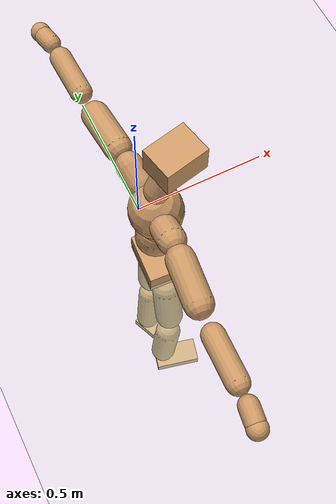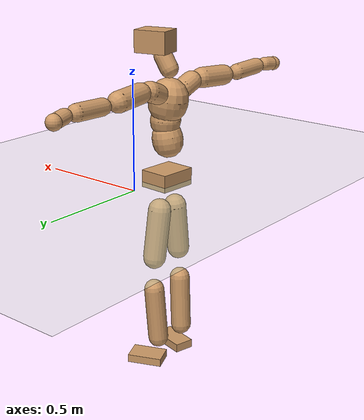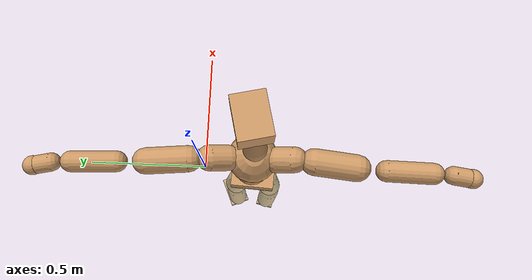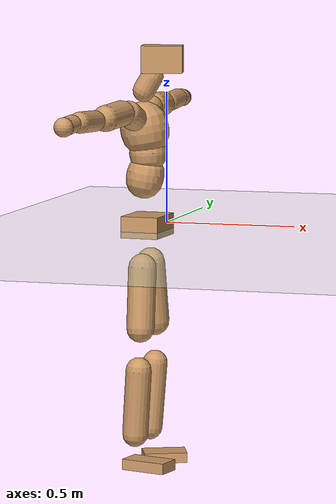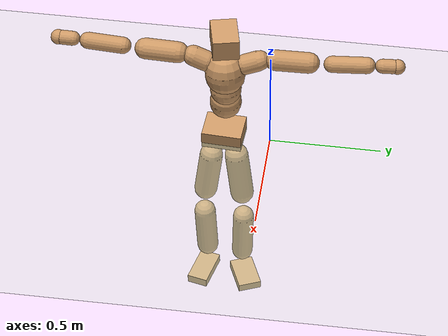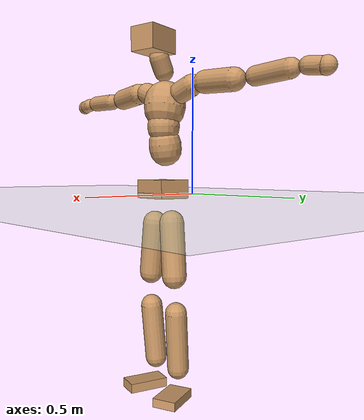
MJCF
<mujoco model="humanoid">
  <compiler coordinate="local" angle="radian"/>
  <default>
    <joint damping="0.0" armature="0.01" stiffness="0.0" limited="true"/>
    <geom conaffinity="1" condim="3" contype="7" margin="0.001" rgba="0.8 0.6 .4 1"/>
  </default>
  <asset>
    <texture type="skybox" builtin="gradient" rgb1=".4 .5 .6" rgb2="0 0 0" width="100" height="100"/>
    <texture builtin="flat" height="1278" mark="cross" markrgb="1 1 1" name="texgeom" random="0.01" rgb1="0.8 0.6 0.4" rgb2="0.8 0.6 0.4" type="cube" width="127"/>
    <texture builtin="checker" height="100" name="texplane" rgb1="0 0 0" rgb2="0.8 0.8 0.8" type="2d" width="100"/>
    <material name="MatPlane" reflectance="0.5" shininess="1" specular="1" texrepeat="60 60" texture="texplane"/>
    <material name="geom" texture="texgeom" texuniform="true"/>
  </asset>
  <worldbody>
    <light cutoff="100" diffuse="1 1 1" dir="-0 0 -1.3" directional="true" exponent="1" pos="0 0 1.3" specular=".1 .1 .1"/>
    <geom conaffinity="1" condim="3" name="floor" pos="0 0 0" rgba="0.8 0.9 0.8 1" size="100 100 .2" type="plane" material="MatPlane"/>
    <body name="Pelvis" pos="-0.0046 -0.21 0.0225">
      <freejoint name="Pelvis"/>
      <geom type="box" contype="1" conaffinity="1" density="500" pos="-0.0103 0.0006 -0.0076" size="0.0718 0.0897 0.0401" quat="0.9996 0.0000 0.0000 -0.0292" name="Pelvis"/>
      <body name="L_Hip" pos="-0.0173 0.0477 -0.0747">
        <joint name="L_Hip_x" type="hinge" pos="0 0 0" axis="1 0 0" stiffness="800" damping="80" armature="0.02" range="-180.0000 180.0000"/>
        <joint name="L_Hip_y" type="hinge" pos="0 0 0" axis="0 1 0" stiffness="800" damping="80" armature="0.02" range="-180.0000 180.0000"/>
        <joint name="L_Hip_z" type="hinge" pos="0 0 0" axis="0 0 1" stiffness="800" damping="80" armature="0.02" range="-180.0000 180.0000"/>
        <geom type="capsule" contype="1" conaffinity="1" density="500" fromto="0.0029 0.0091 -0.0771 0.0118 0.0366 -0.3085" size="0.0529" name="L_Hip"/>
        <body name="L_Knee" pos="0.0147 0.0457 -0.3856">
          <joint name="L_Knee_x" type="hinge" pos="0 0 0" axis="1 0 0" stiffness="800" damping="80" armature="0.02" range="-180.0000 180.0000"/>
          <joint name="L_Knee_y" type="hinge" pos="0 0 0" axis="0 1 0" stiffness="800" damping="80" armature="0.02" range="-180.0000 180.0000"/>
          <joint name="L_Knee_z" type="hinge" pos="0 0 0" axis="0 0 1" stiffness="800" damping="80" armature="0.02" range="-180.0000 180.0000"/>
          <geom type="capsule" contype="1" conaffinity="1" density="500" fromto="-0.0061 -0.0024 -0.0835 -0.0245 -0.0095 -0.3339" size="0.0472" name="L_Knee"/>
          <body name="L_Ankle" pos="-0.0307 -0.0119 -0.4174">
            <joint name="L_Ankle_x" type="hinge" pos="0 0 0" axis="1 0 0" stiffness="800" damping="80" armature="0.02" range="-180.0000 180.0000"/>
            <joint name="L_Ankle_y" type="hinge" pos="0 0 0" axis="0 1 0" stiffness="800" damping="80" armature="0.02" range="-180.0000 180.0000"/>
            <joint name="L_Ankle_z" type="hinge" pos="0 0 0" axis="0 0 1" stiffness="800" damping="80" armature="0.02" range="-180.0000 180.0000"/>
            <geom type="box" contype="1" conaffinity="1" density="500" pos="0.0573 0.0240 -0.0294" size="0.082 0.0525 0.019" quat="0.9804 0.0000 0.0000 0.1970" name="L_Ankle"/>
            <body name="L_Toe" pos="0.1146 0.048 -0.0589">
              <joint name="L_Toe_x" type="hinge" pos="0 0 0" axis="1 0 0" stiffness="500" damping="50" armature="0.02" range="-180.0000 180.0000"/>
              <joint name="L_Toe_y" type="hinge" pos="0 0 0" axis="0 1 0" stiffness="500" damping="50" armature="0.02" range="-180.0000 180.0000"/>
              <joint name="L_Toe_z" type="hinge" pos="0 0 0" axis="0 0 1" stiffness="500" damping="50" armature="0.02" range="-180.0000 180.0000"/>
              <geom type="box" contype="1" conaffinity="1" density="500" pos="0.0000 0.0000 0.0310" size="0.001 0.0025 0.001" quat="0.9796 0.0000 0.0000 0.2011" name="L_Toe"/>
            </body>
          </body>
        </body>
      </body>
      <body name="R_Hip" pos="-0.0127 -0.0487 -0.0837">
        <joint name="R_Hip_x" type="hinge" pos="0 0 0" axis="1 0 0" stiffness="800" damping="80" armature="0.02" range="-180.0000 180.0000"/>
        <joint name="R_Hip_y" type="hinge" pos="0 0 0" axis="0 1 0" stiffness="800" damping="80" armature="0.02" range="-180.0000 180.0000"/>
        <joint name="R_Hip_z" type="hinge" pos="0 0 0" axis="0 0 1" stiffness="800" damping="80" armature="0.02" range="-180.0000 180.0000"/>
        <geom type="capsule" contype="1" conaffinity="1" density="500" fromto="0.0001 -0.0089 -0.0754 0.0004 -0.0356 -0.3015" size="0.052" name="R_Hip"/>
        <body name="R_Knee" pos="0.0005 -0.0445 -0.3769">
          <joint name="R_Knee_x" type="hinge" pos="0 0 0" axis="1 0 0" stiffness="800" damping="80" armature="0.02" range="-180.0000 180.0000"/>
          <joint name="R_Knee_y" type="hinge" pos="0 0 0" axis="0 1 0" stiffness="800" damping="80" armature="0.02" range="-180.0000 180.0000"/>
          <joint name="R_Knee_z" type="hinge" pos="0 0 0" axis="0 0 1" stiffness="800" damping="80" armature="0.02" range="-180.0000 180.0000"/>
          <geom type="capsule" contype="1" conaffinity="1" density="500" fromto="-0.0058 0.0033 -0.0817 -0.0232 0.0131 -0.3268" size="0.0483" name="R_Knee"/>
          <body name="R_Ankle" pos="-0.029 0.0163 -0.4085">
            <joint name="R_Ankle_x" type="hinge" pos="0 0 0" axis="1 0 0" stiffness="800" damping="80" armature="0.02" range="-180.0000 180.0000"/>
            <joint name="R_Ankle_y" type="hinge" pos="0 0 0" axis="0 1 0" stiffness="800" damping="80" armature="0.02" range="-180.0000 180.0000"/>
            <joint name="R_Ankle_z" type="hinge" pos="0 0 0" axis="0 0 1" stiffness="800" damping="80" armature="0.02" range="-180.0000 180.0000"/>
            <geom type="box" contype="1" conaffinity="1" density="500" pos="0.0618 -0.0147 -0.0300" size="0.0877 0.0465 0.0203" quat="0.9932 0.0000 0.0000 -0.1168" name="R_Ankle"/>
            <body name="R_Toe" pos="0.1236 -0.0295 -0.06">
              <joint name="R_Toe_x" type="hinge" pos="0 0 0" axis="1 0 0" stiffness="500" damping="50" armature="0.02" range="-180.0000 180.0000"/>
              <joint name="R_Toe_y" type="hinge" pos="0 0 0" axis="0 1 0" stiffness="500" damping="50" armature="0.02" range="-180.0000 180.0000"/>
              <joint name="R_Toe_z" type="hinge" pos="0 0 0" axis="0 0 1" stiffness="500" damping="50" armature="0.02" range="-180.0000 180.0000"/>
              <geom type="box" contype="1" conaffinity="1" density="500" pos="0.0000 0.0000 0.0308" size="0.0009 0.0023 0.0011" quat="0.9942 0.0000 0.0000 -0.1075" name="R_Toe"/>
            </body>
          </body>
        </body>
      </body>
      <body name="Torso" pos="-0.0316 0.0046 0.1127">
        <joint name="Torso_x" type="hinge" pos="0 0 0" axis="1 0 0" stiffness="1000" damping="100" armature="0.02" range="-180.0000 180.0000"/>
        <joint name="Torso_y" type="hinge" pos="0 0 0" axis="0 1 0" stiffness="1000" damping="100" armature="0.02" range="-180.0000 180.0000"/>
        <joint name="Torso_z" type="hinge" pos="0 0 0" axis="0 0 1" stiffness="1000" damping="100" armature="0.02" range="-180.0000 180.0000"/>
        <geom type="capsule" contype="1" conaffinity="1" density="500" fromto="0.0138 0.0028 0.0748 0.0092 0.0019 0.0499" size="0.0703" name="Torso"/>
        <body name="Spine" pos="0.023 0.0047 0.1246">
          <joint name="Spine_x" type="hinge" pos="0 0 0" axis="1 0 0" stiffness="1000" damping="100" armature="0.02" range="-180.0000 180.0000"/>
          <joint name="Spine_y" type="hinge" pos="0 0 0" axis="0 1 0" stiffness="1000" damping="100" armature="0.02" range="-180.0000 180.0000"/>
          <joint name="Spine_z" type="hinge" pos="0 0 0" axis="0 0 1" stiffness="1000" damping="100" armature="0.02" range="-180.0000 180.0000"/>
          <geom type="capsule" contype="1" conaffinity="1" density="500" fromto="-0.0009 -0.0007 0.0299 -0.0006 -0.0005 0.0199" size="0.0696" name="Spine"/>
          <body name="Chest" pos="-0.0014 -0.0012 0.0499">
            <joint name="Chest_x" type="hinge" pos="0 0 0" axis="1 0 0" stiffness="1000" damping="100" armature="0.02" range="-180.0000 180.0000"/>
            <joint name="Chest_y" type="hinge" pos="0 0 0" axis="0 1 0" stiffness="1000" damping="100" armature="0.02" range="-180.0000 180.0000"/>
            <joint name="Chest_z" type="hinge" pos="0 0 0" axis="0 0 1" stiffness="1000" damping="100" armature="0.02" range="-180.0000 180.0000"/>
            <geom type="capsule" contype="1" conaffinity="1" density="500" fromto="-0.0132 -0.0047 0.0790 -0.0088 -0.0032 0.0527" size="0.0901" name="Chest"/>
            <body name="Neck" pos="-0.021 -0.0128 0.1903">
              <joint name="Neck_x" type="hinge" pos="0 0 0" axis="1 0 0" stiffness="500" damping="50" armature="0.02" range="-180.0000 180.0000"/>
              <joint name="Neck_y" type="hinge" pos="0 0 0" axis="0 1 0" stiffness="500" damping="50" armature="0.02" range="-180.0000 180.0000"/>
              <joint name="Neck_z" type="hinge" pos="0 0 0" axis="0 0 1" stiffness="500" damping="50" armature="0.02" range="-180.0000 180.0000"/>
              <geom type="capsule" contype="1" conaffinity="1" density="500" fromto="0.0102 0.0020 0.0179 0.0408 0.0080 0.0716" size="0.0418" name="Neck"/>
              <body name="Head" pos="0.051 0.0099 0.0895">
                <joint name="Head_x" type="hinge" pos="0 0 0" axis="1 0 0" stiffness="500" damping="50" armature="0.02" range="-180.0000 180.0000"/>
                <joint name="Head_y" type="hinge" pos="0 0 0" axis="0 1 0" stiffness="500" damping="50" armature="0.02" range="-180.0000 180.0000"/>
                <joint name="Head_z" type="hinge" pos="0 0 0" axis="0 0 1" stiffness="500" damping="50" armature="0.02" range="-180.0000 180.0000"/>
                <geom type="box" contype="1" conaffinity="1" density="500" pos="0.0265 0.0060 0.0457" size="0.0759 0.0583 0.0504" quat="0.9939 0.0000 0.0000 0.1106" name="Head"/>
              </body>
            </body>
            <body name="L_Thorax" pos="-0.0213 0.0598 0.1028">
              <joint name="L_Thorax_x" type="hinge" pos="0 0 0" axis="1 0 0" stiffness="500" damping="50" armature="0.02" range="-180.0000 180.0000"/>
              <joint name="L_Thorax_y" type="hinge" pos="0 0 0" axis="0 1 0" stiffness="500" damping="50" armature="0.02" range="-180.0000 180.0000"/>
              <joint name="L_Thorax_z" type="hinge" pos="0 0 0" axis="0 0 1" stiffness="500" damping="50" armature="0.02" range="-180.0000 180.0000"/>
              <geom type="capsule" contype="1" conaffinity="1" density="500" fromto="-0.0027 0.0212 0.0079 -0.0108 0.0850 0.0317" size="0.046" name="L_Thorax"/>
              <body name="L_Shoulder" pos="-0.0135 0.1062 0.0397">
                <joint name="L_Shoulder_x" type="hinge" pos="0 0 0" axis="1 0 0" stiffness="500" damping="50" armature="0.02" range="-720.0000 720.0000"/>
                <joint name="L_Shoulder_y" type="hinge" pos="0 0 0" axis="0 1 0" stiffness="500" damping="50" armature="0.02" range="-720.0000 720.0000"/>
                <joint name="L_Shoulder_z" type="hinge" pos="0 0 0" axis="0 0 1" stiffness="500" damping="50" armature="0.02" range="-720.0000 720.0000"/>
                <geom type="capsule" contype="1" conaffinity="1" density="500" fromto="-0.0038 0.0495 -0.0027 -0.0153 0.1980 -0.0109" size="0.0467" name="L_Shoulder"/>
                <body name="L_Elbow" pos="-0.0191 0.2475 -0.0136">
                  <joint name="L_Elbow_x" type="hinge" pos="0 0 0" axis="1 0 0" stiffness="500" damping="50" armature="0.02" range="-720.0000 720.0000"/>
                  <joint name="L_Elbow_y" type="hinge" pos="0 0 0" axis="0 1 0" stiffness="500" damping="50" armature="0.02" range="-720.0000 720.0000"/>
                  <joint name="L_Elbow_z" type="hinge" pos="0 0 0" axis="0 0 1" stiffness="500" damping="50" armature="0.02" range="-720.0000 720.0000"/>
                  <geom type="capsule" contype="1" conaffinity="1" density="500" fromto="-0.0022 0.0512 0.0020 -0.0087 0.2047 0.0080" size="0.0373" name="L_Elbow"/>
                  <body name="L_Wrist" pos="-0.0109 0.2559 0.01">
                    <joint name="L_Wrist_x" type="hinge" pos="0 0 0" axis="1 0 0" stiffness="300" damping="30" armature="0.02" range="-180.0000 180.0000"/>
                    <joint name="L_Wrist_y" type="hinge" pos="0 0 0" axis="0 1 0" stiffness="300" damping="30" armature="0.02" range="-180.0000 180.0000"/>
                    <joint name="L_Wrist_z" type="hinge" pos="0 0 0" axis="0 0 1" stiffness="300" damping="30" armature="0.02" range="-180.0000 180.0000"/>
                    <geom type="capsule" contype="1" conaffinity="1" density="500" fromto="-0.0030 0.0166 -0.0020 -0.0121 0.0663 -0.0079" size="0.0321" name="L_Wrist"/>
                    <body name="L_Hand" pos="-0.0151 0.0829 -0.0099">
                      <joint name="L_Hand_x" type="hinge" pos="0 0 0" axis="1 0 0" stiffness="300" damping="30" armature="0.02" range="-180.0000 180.0000"/>
                      <joint name="L_Hand_y" type="hinge" pos="0 0 0" axis="0 1 0" stiffness="300" damping="30" armature="0.02" range="-180.0000 180.0000"/>
                      <joint name="L_Hand_z" type="hinge" pos="0 0 0" axis="0 0 1" stiffness="300" damping="30" armature="0.02" range="-180.0000 180.0000"/>
                      <geom type="sphere" contype="1" conaffinity="1" density="500" size="0.0338" pos="0.0000 0.0000 0.0000" name="L_Hand"/>
                    </body>
                  </body>
                </body>
              </body>
            </body>
            <body name="R_Thorax" pos="-0.0237 -0.0705 0.102">
              <joint name="R_Thorax_x" type="hinge" pos="0 0 0" axis="1 0 0" stiffness="500" damping="50" armature="0.02" range="-180.0000 180.0000"/>
              <joint name="R_Thorax_y" type="hinge" pos="0 0 0" axis="0 1 0" stiffness="500" damping="50" armature="0.02" range="-180.0000 180.0000"/>
              <joint name="R_Thorax_z" type="hinge" pos="0 0 0" axis="0 0 1" stiffness="500" damping="50" armature="0.02" range="-180.0000 180.0000"/>
              <geom type="capsule" contype="1" conaffinity="1" density="500" fromto="-0.0009 -0.0192 0.0079 -0.0036 -0.0770 0.0315" size="0.0464" name="R_Thorax"/>
              <body name="R_Shoulder" pos="-0.0046 -0.0962 0.0394">
                <joint name="R_Shoulder_x" type="hinge" pos="0 0 0" axis="1 0 0" stiffness="500" damping="50" armature="0.02" range="-720.0000 720.0000"/>
                <joint name="R_Shoulder_y" type="hinge" pos="0 0 0" axis="0 1 0" stiffness="500" damping="50" armature="0.02" range="-720.0000 720.0000"/>
                <joint name="R_Shoulder_z" type="hinge" pos="0 0 0" axis="0 0 1" stiffness="500" damping="50" armature="0.02" range="-720.0000 720.0000"/>
                <geom type="capsule" contype="1" conaffinity="1" density="500" fromto="-0.0047 -0.0495 -0.0028 -0.0189 -0.1980 -0.0111" size="0.0474" name="R_Shoulder"/>
                <body name="R_Elbow" pos="-0.0236 -0.2475 -0.0138">
                  <joint name="R_Elbow_x" type="hinge" pos="0 0 0" axis="1 0 0" stiffness="500" damping="50" armature="0.02" range="-720.0000 720.0000"/>
                  <joint name="R_Elbow_y" type="hinge" pos="0 0 0" axis="0 1 0" stiffness="500" damping="50" armature="0.02" range="-720.0000 720.0000"/>
                  <joint name="R_Elbow_z" type="hinge" pos="0 0 0" axis="0 0 1" stiffness="500" damping="50" armature="0.02" range="-720.0000 720.0000"/>
                  <geom type="capsule" contype="1" conaffinity="1" density="500" fromto="-0.0015 -0.0522 0.0021 -0.0059 -0.2087 0.0084" size="0.0377" name="R_Elbow"/>
                  <body name="R_Wrist" pos="-0.0074 -0.2609 0.0105">
                    <joint name="R_Wrist_x" type="hinge" pos="0 0 0" axis="1 0 0" stiffness="300" damping="30" armature="0.02" range="-180.0000 180.0000"/>
                    <joint name="R_Wrist_y" type="hinge" pos="0 0 0" axis="0 1 0" stiffness="300" damping="30" armature="0.02" range="-180.0000 180.0000"/>
                    <joint name="R_Wrist_z" type="hinge" pos="0 0 0" axis="0 0 1" stiffness="300" damping="30" armature="0.02" range="-180.0000 180.0000"/>
                    <geom type="capsule" contype="1" conaffinity="1" density="500" fromto="-0.0020 -0.0167 -0.0016 -0.0079 -0.0669 -0.0064" size="0.0323" name="R_Wrist"/>
                    <body name="R_Hand" pos="-0.0099 -0.0836 -0.008">
                      <joint name="R_Hand_x" type="hinge" pos="0 0 0" axis="1 0 0" stiffness="300" damping="30" armature="0.02" range="-180.0000 180.0000"/>
                      <joint name="R_Hand_y" type="hinge" pos="0 0 0" axis="0 1 0" stiffness="300" damping="30" armature="0.02" range="-180.0000 180.0000"/>
                      <joint name="R_Hand_z" type="hinge" pos="0 0 0" axis="0 0 1" stiffness="300" damping="30" armature="0.02" range="-180.0000 180.0000"/>
                      <geom type="sphere" contype="1" conaffinity="1" density="500" size="0.0339" pos="0.0000 0.0000 0.0000" name="R_Hand"/>
                    </body>
                  </body>
                </body>
              </body>
            </body>
          </body>
        </body>
      </body>
    </body>
  </worldbody>
  <actuator>
    <motor name="L_Hip_x" joint="L_Hip_x" gear="500"/>
    <motor name="L_Hip_y" joint="L_Hip_y" gear="500"/>
    <motor name="L_Hip_z" joint="L_Hip_z" gear="500"/>
    <motor name="L_Knee_x" joint="L_Knee_x" gear="500"/>
    <motor name="L_Knee_y" joint="L_Knee_y" gear="500"/>
    <motor name="L_Knee_z" joint="L_Knee_z" gear="500"/>
    <motor name="L_Ankle_x" joint="L_Ankle_x" gear="500"/>
    <motor name="L_Ankle_y" joint="L_Ankle_y" gear="500"/>
    <motor name="L_Ankle_z" joint="L_Ankle_z" gear="500"/>
    <motor name="L_Toe_x" joint="L_Toe_x" gear="500"/>
    <motor name="L_Toe_y" joint="L_Toe_y" gear="500"/>
    <motor name="L_Toe_z" joint="L_Toe_z" gear="500"/>
    <motor name="R_Hip_x" joint="R_Hip_x" gear="500"/>
    <motor name="R_Hip_y" joint="R_Hip_y" gear="500"/>
    <motor name="R_Hip_z" joint="R_Hip_z" gear="500"/>
    <motor name="R_Knee_x" joint="R_Knee_x" gear="500"/>
    <motor name="R_Knee_y" joint="R_Knee_y" gear="500"/>
    <motor name="R_Knee_z" joint="R_Knee_z" gear="500"/>
    <motor name="R_Ankle_x" joint="R_Ankle_x" gear="500"/>
    <motor name="R_Ankle_y" joint="R_Ankle_y" gear="500"/>
    <motor name="R_Ankle_z" joint="R_Ankle_z" gear="500"/>
    <motor name="R_Toe_x" joint="R_Toe_x" gear="500"/>
    <motor name="R_Toe_y" joint="R_Toe_y" gear="500"/>
    <motor name="R_Toe_z" joint="R_Toe_z" gear="500"/>
    <motor name="Torso_x" joint="Torso_x" gear="500"/>
    <motor name="Torso_y" joint="Torso_y" gear="500"/>
    <motor name="Torso_z" joint="Torso_z" gear="500"/>
    <motor name="Spine_x" joint="Spine_x" gear="500"/>
    <motor name="Spine_y" joint="Spine_y" gear="500"/>
    <motor name="Spine_z" joint="Spine_z" gear="500"/>
    <motor name="Chest_x" joint="Chest_x" gear="500"/>
    <motor name="Chest_y" joint="Chest_y" gear="500"/>
    <motor name="Chest_z" joint="Chest_z" gear="500"/>
    <motor name="Neck_x" joint="Neck_x" gear="500"/>
    <motor name="Neck_y" joint="Neck_y" gear="500"/>
    <motor name="Neck_z" joint="Neck_z" gear="500"/>
    <motor name="Head_x" joint="Head_x" gear="500"/>
    <motor name="Head_y" joint="Head_y" gear="500"/>
    <motor name="Head_z" joint="Head_z" gear="500"/>
    <motor name="L_Thorax_x" joint="L_Thorax_x" gear="500"/>
    <motor name="L_Thorax_y" joint="L_Thorax_y" gear="500"/>
    <motor name="L_Thorax_z" joint="L_Thorax_z" gear="500"/>
    <motor name="L_Shoulder_x" joint="L_Shoulder_x" gear="500"/>
    <motor name="L_Shoulder_y" joint="L_Shoulder_y" gear="500"/>
    <motor name="L_Shoulder_z" joint="L_Shoulder_z" gear="500"/>
    <motor name="L_Elbow_x" joint="L_Elbow_x" gear="500"/>
    <motor name="L_Elbow_y" joint="L_Elbow_y" gear="500"/>
    <motor name="L_Elbow_z" joint="L_Elbow_z" gear="500"/>
    <motor name="L_Wrist_x" joint="L_Wrist_x" gear="500"/>
    <motor name="L_Wrist_y" joint="L_Wrist_y" gear="500"/>
    <motor name="L_Wrist_z" joint="L_Wrist_z" gear="500"/>
    <motor name="L_Hand_x" joint="L_Hand_x" gear="500"/>
    <motor name="L_Hand_y" joint="L_Hand_y" gear="500"/>
    <motor name="L_Hand_z" joint="L_Hand_z" gear="500"/>
    <motor name="R_Thorax_x" joint="R_Thorax_x" gear="500"/>
    <motor name="R_Thorax_y" joint="R_Thorax_y" gear="500"/>
    <motor name="R_Thorax_z" joint="R_Thorax_z" gear="500"/>
    <motor name="R_Shoulder_x" joint="R_Shoulder_x" gear="500"/>
    <motor name="R_Shoulder_y" joint="R_Shoulder_y" gear="500"/>
    <motor name="R_Shoulder_z" joint="R_Shoulder_z" gear="500"/>
    <motor name="R_Elbow_x" joint="R_Elbow_x" gear="500"/>
    <motor name="R_Elbow_y" joint="R_Elbow_y" gear="500"/>
    <motor name="R_Elbow_z" joint="R_Elbow_z" gear="500"/>
    <motor name="R_Wrist_x" joint="R_Wrist_x" gear="500"/>
    <motor name="R_Wrist_y" joint="R_Wrist_y" gear="500"/>
    <motor name="R_Wrist_z" joint="R_Wrist_z" gear="500"/>
    <motor name="R_Hand_x" joint="R_Hand_x" gear="500"/>
    <motor name="R_Hand_y" joint="R_Hand_y" gear="500"/>
    <motor name="R_Hand_z" joint="R_Hand_z" gear="500"/>
  </actuator>
  <contact>
    <exclude body1="Torso" body2="Chest"/>
    <exclude body1="Head" body2="Chest"/>
    <exclude body1="R_Knee" body2="R_Toe"/>
    <exclude body1="R_Knee" body2="L_Ankle"/>
    <exclude body1="R_Knee" body2="L_Toe"/>
    <exclude body1="L_Knee" body2="L_Toe"/>
    <exclude body1="L_Knee" body2="R_Ankle"/>
    <exclude body1="L_Knee" body2="R_Toe"/>
    <exclude body1="L_Shoulder" body2="Chest"/>
    <exclude body1="R_Shoulder" body2="Chest"/>
  </contact>
  <sensor/>
  <size njmax="700" nconmax="700"/>
</mujoco>
